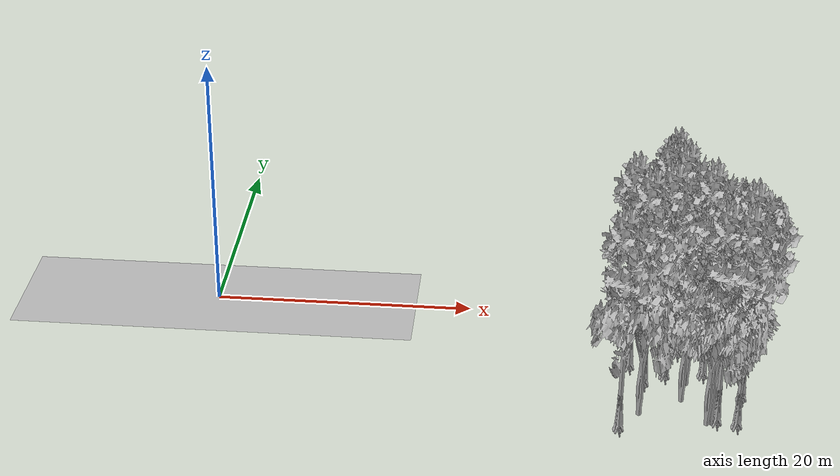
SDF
<sdf version="1.7">
 <world name="default">
  <model name="ground_plane">
   <static>1</static>
   <link name="link">
    <collision name="collision">
     <pose>-50 0 0 0 -0 0</pose>
     <geometry><plane><normal>0 0 1</normal><size>100 100</size></plane></geometry>
     <surface><contact><ode><min_depth>0.01</min_depth><max_vel>0</max_vel></ode></contact></surface>
    </collision>
    <visual name="grass">
     <cast_shadows>0</cast_shadows>
     <geometry>
      <mesh>
       <scale>0.5814285714285714 0.18142857142857144 0.1</scale>
       <uri>file://grass_plane/meshes/grass_plane.dae</uri>
      </mesh>
     </geometry>
    </visual>
   </link>
  </model>
  <model name="Tree 29">
   <static>1</static>
   <pose>36.32571474858473 -8.994952364970079 0 1.57079 -0 0</pose>
   <link name="link">
    <collision name="collision">
     <geometry><mesh><scale>3.5 5 3.5</scale><uri>model://tree_2/meshes/tree_2.obj</uri></mesh></geometry>
    </collision>
    <visual name="visual">
     <geometry><mesh><scale>3.5 5 3.5</scale><uri>model://tree_2/meshes/tree_2.obj</uri></mesh></geometry>
    </visual>
   </link>
  </model>
  <model name="Tree 42">
   <static>1</static>
   <pose>34.9254473961321 -7.58668823014683 0 1.57079 -0 0</pose>
   <link name="link">
    <collision name="collision">
     <geometry><mesh><scale>3.5 5 3.5</scale><uri>model://tree_9/meshes/tree_9.obj</uri></mesh></geometry>
    </collision>
    <visual name="visual">
     <geometry><mesh><scale>3.5 5 3.5</scale><uri>model://tree_9/meshes/tree_9.obj</uri></mesh></geometry>
    </visual>
   </link>
  </model>
  <model name="Tree 81">
   <static>1</static>
   <pose>35.373778588794934 -2.4698964358086624 0 1.57079 -0 0</pose>
   <link name="link">
    <collision name="collision">
     <geometry><mesh><scale>3.5 5 3.5</scale><uri>model://tree_9/meshes/tree_9.obj</uri></mesh></geometry>
    </collision>
    <visual name="visual">
     <geometry><mesh><scale>3.5 5 3.5</scale><uri>model://tree_9/meshes/tree_9.obj</uri></mesh></geometry>
    </visual>
   </link>
  </model>
  <model name="Tree 94">
   <static>1</static>
   <pose>32.79566492050654 -13.093585895643212 0 1.57079 -0 0</pose>
   <link name="link">
    <collision name="collision">
     <geometry><mesh><scale>3.5 5 3.5</scale><uri>model://tree_2/meshes/tree_2.obj</uri></mesh></geometry>
    </collision>
    <visual name="visual">
     <geometry><mesh><scale>3.5 5 3.5</scale><uri>model://tree_2/meshes/tree_2.obj</uri></mesh></geometry>
    </visual>
   </link>
  </model>
  <model name="Tree 102">
   <static>1</static>
   <pose>35.6959814997343 -0.07437951537089127 0 1.57079 -0 0</pose>
   <link name="link">
    <collision name="collision">
     <geometry><mesh><scale>3.5 5 3.5</scale><uri>model://tree_2/meshes/tree_2.obj</uri></mesh></geometry>
    </collision>
    <visual name="visual">
     <geometry><mesh><scale>3.5 5 3.5</scale><uri>model://tree_2/meshes/tree_2.obj</uri></mesh></geometry>
    </visual>
   </link>
  </model>
  <model name="Tree 169">
   <static>1</static>
   <pose>37.76007086675561 -7.217405416850485 0 1.57079 -0 0</pose>
   <link name="link">
    <collision name="collision">
     <geometry><mesh><scale>3.5 5 3.5</scale><uri>model://tree_9/meshes/tree_9.obj</uri></mesh></geometry>
    </collision>
    <visual name="visual">
     <geometry><mesh><scale>3.5 5 3.5</scale><uri>model://tree_9/meshes/tree_9.obj</uri></mesh></geometry>
    </visual>
   </link>
  </model>
  <model name="Tree 177">
   <static>1</static>
   <pose>40.76821783945631 0.4888879819969265 0 1.57079 -0 0</pose>
   <link name="link">
    <collision name="collision">
     <geometry><mesh><scale>3.5 5 3.5</scale><uri>model://tree_2/meshes/tree_2.obj</uri></mesh></geometry>
    </collision>
    <visual name="visual">
     <geometry><mesh><scale>3.5 5 3.5</scale><uri>model://tree_2/meshes/tree_2.obj</uri></mesh></geometry>
    </visual>
   </link>
  </model>
  <model name="Tree 182">
   <static>1</static>
   <pose>35.958897464913576 -4.47246208059078 0 1.57079 -0 0</pose>
   <link name="link">
    <collision name="collision">
     <geometry><mesh><scale>3.5 5 3.5</scale><uri>model://tree_9/meshes/tree_9.obj</uri></mesh></geometry>
    </collision>
    <visual name="visual">
     <geometry><mesh><scale>3.5 5 3.5</scale><uri>model://tree_9/meshes/tree_9.obj</uri></mesh></geometry>
    </visual>
   </link>
  </model>
  <model name="Tree 206">
   <static>1</static>
   <pose>37.837810863013374 -13.72571391643914 0 1.57079 -0 0</pose>
   <link name="link">
    <collision name="collision">
     <geometry><mesh><scale>3.5 5 3.5</scale><uri>model://tree_2/meshes/tree_2.obj</uri></mesh></geometry>
    </collision>
    <visual name="visual">
     <geometry><mesh><scale>3.5 5 3.5</scale><uri>model://tree_2/meshes/tree_2.obj</uri></mesh></geometry>
    </visual>
   </link>
  </model>
  <model name="Tree 218">
   <static>1</static>
   <pose>40.43995844700997 -9.968782964605484 0 1.57079 -0 0</pose>
   <link name="link">
    <collision name="collision">
     <geometry><mesh><scale>3.5 5 3.5</scale><uri>model://tree_9/meshes/tree_9.obj</uri></mesh></geometry>
    </collision>
    <visual name="visual">
     <geometry><mesh><scale>3.5 5 3.5</scale><uri>model://tree_9/meshes/tree_9.obj</uri></mesh></geometry>
    </visual>
   </link>
  </model>
  <model name="Tree 251">
   <static>1</static>
   <pose>37.598162064004185 -13.91899001240618 0 1.57079 -0 0</pose>
   <link name="link">
    <collision name="collision">
     <geometry><mesh><scale>3.5 5 3.5</scale><uri>model://tree_2/meshes/tree_2.obj</uri></mesh></geometry>
    </collision>
    <visual name="visual">
     <geometry><mesh><scale>3.5 5 3.5</scale><uri>model://tree_2/meshes/tree_2.obj</uri></mesh></geometry>
    </visual>
   </link>
  </model>
  <model name="Tree 276">
   <static>1</static>
   <pose>38.374602566290534 -12.854754569283113 0 1.57079 -0 0</pose>
   <link name="link">
    <collision name="collision">
     <geometry><mesh><scale>3.5 5 3.5</scale><uri>model://tree_2/meshes/tree_2.obj</uri></mesh></geometry>
    </collision>
    <visual name="visual">
     <geometry><mesh><scale>3.5 5 3.5</scale><uri>model://tree_2/meshes/tree_2.obj</uri></mesh></geometry>
    </visual>
   </link>
  </model>
  <model name="Tree 311">
   <static>1</static>
   <pose>35.10260598075915 -3.575478467219554 0 1.57079 -0 0</pose>
   <link name="link">
    <collision name="collision">
     <geometry><mesh><scale>3.5 5 3.5</scale><uri>model://tree_9/meshes/tree_9.obj</uri></mesh></geometry>
    </collision>
    <visual name="visual">
     <geometry><mesh><scale>3.5 5 3.5</scale><uri>model://tree_9/meshes/tree_9.obj</uri></mesh></geometry>
    </visual>
   </link>
  </model>
  <model name="Tree 322">
   <static>1</static>
   <pose>38.44847556047969 -13.129215330864985 0 1.57079 -0 0</pose>
   <link name="link">
    <collision name="collision">
     <geometry><mesh><scale>3.5 5 3.5</scale><uri>model://tree_9/meshes/tree_9.obj</uri></mesh></geometry>
    </collision>
    <visual name="visual">
     <geometry><mesh><scale>3.5 5 3.5</scale><uri>model://tree_9/meshes/tree_9.obj</uri></mesh></geometry>
    </visual>
   </link>
  </model>
  <model name="Tree 359">
   <static>1</static>
   <pose>35.61822718064141 -3.190079952205375 0 1.57079 -0 0</pose>
   <link name="link">
    <collision name="collision">
     <geometry><mesh><scale>3.5 5 3.5</scale><uri>model://tree_2/meshes/tree_2.obj</uri></mesh></geometry>
    </collision>
    <visual name="visual">
     <geometry><mesh><scale>3.5 5 3.5</scale><uri>model://tree_2/meshes/tree_2.obj</uri></mesh></geometry>
    </visual>
   </link>
  </model>
  <model name="Tree 378">
   <static>1</static>
   <pose>39.8793832231853 -13.454902990605364 0 1.57079 -0 0</pose>
   <link name="link">
    <collision name="collision">
     <geometry><mesh><scale>3.5 5 3.5</scale><uri>model://tree_9/meshes/tree_9.obj</uri></mesh></geometry>
    </collision>
    <visual name="visual">
     <geometry><mesh><scale>3.5 5 3.5</scale><uri>model://tree_9/meshes/tree_9.obj</uri></mesh></geometry>
    </visual>
   </link>
  </model>
  <model name="Tree 409">
   <static>1</static>
   <pose>32.3152965745484 -6.55460995013703 0 1.57079 -0 0</pose>
   <link name="link">
    <collision name="collision">
     <geometry><mesh><scale>3.5 5 3.5</scale><uri>model://tree_9/meshes/tree_9.obj</uri></mesh></geometry>
    </collision>
    <visual name="visual">
     <geometry><mesh><scale>3.5 5 3.5</scale><uri>model://tree_9/meshes/tree_9.obj</uri></mesh></geometry>
    </visual>
   </link>
  </model>
  <model name="Tree 424">
   <static>1</static>
   <pose>36.345175766459406 -8.501096724038955 0 1.57079 -0 0</pose>
   <link name="link">
    <collision name="collision">
     <geometry><mesh><scale>3.5 5 3.5</scale><uri>model://tree_2/meshes/tree_2.obj</uri></mesh></geometry>
    </collision>
    <visual name="visual">
     <geometry><mesh><scale>3.5 5 3.5</scale><uri>model://tree_2/meshes/tree_2.obj</uri></mesh></geometry>
    </visual>
   </link>
  </model>
  <model name="Tree 468">
   <static>1</static>
   <pose>33.351012721073204 -8.675570456178491 0 1.57079 -0 0</pose>
   <link name="link">
    <collision name="collision">
     <geometry><mesh><scale>3.5 5 3.5</scale><uri>model://tree_9/meshes/tree_9.obj</uri></mesh></geometry>
    </collision>
    <visual name="visual">
     <geometry><mesh><scale>3.5 5 3.5</scale><uri>model://tree_9/meshes/tree_9.obj</uri></mesh></geometry>
    </visual>
   </link>
  </model>
  <model name="Tree 492">
   <static>1</static>
   <pose>34.858276971306836 -4.000385164776832 0 1.57079 -0 0</pose>
   <link name="link">
    <collision name="collision">
     <geometry><mesh><scale>3.5 5 3.5</scale><uri>model://tree_9/meshes/tree_9.obj</uri></mesh></geometry>
    </collision>
    <visual name="visual">
     <geometry><mesh><scale>3.5 5 3.5</scale><uri>model://tree_9/meshes/tree_9.obj</uri></mesh></geometry>
    </visual>
   </link>
  </model>
  <model name="Tree 503">
   <static>1</static>
   <pose>31.437692960935323 -14.509718115144073 0 1.57079 -0 0</pose>
   <link name="link">
    <collision name="collision">
     <geometry><mesh><scale>3.5 5 3.5</scale><uri>model://tree_9/meshes/tree_9.obj</uri></mesh></geometry>
    </collision>
    <visual name="visual">
     <geometry><mesh><scale>3.5 5 3.5</scale><uri>model://tree_9/meshes/tree_9.obj</uri></mesh></geometry>
    </visual>
   </link>
  </model>
  <model name="Tree 514">
   <static>1</static>
   <pose>35.89834544071928 -11.130598134270496 0 1.57079 -0 0</pose>
   <link name="link">
    <collision name="collision">
     <geometry><mesh><scale>3.5 5 3.5</scale><uri>model://tree_2/meshes/tree_2.obj</uri></mesh></geometry>
    </collision>
    <visual name="visual">
     <geometry><mesh><scale>3.5 5 3.5</scale><uri>model://tree_2/meshes/tree_2.obj</uri></mesh></geometry>
    </visual>
   </link>
  </model>
  <model name="Tree 521">
   <static>1</static>
   <pose>38.10601704045051 -5.353956642852291 0 1.57079 -0 0</pose>
   <link name="link">
    <collision name="collision">
     <geometry><mesh><scale>3.5 5 3.5</scale><uri>model://tree_2/meshes/tree_2.obj</uri></mesh></geometry>
    </collision>
    <visual name="visual">
     <geometry><mesh><scale>3.5 5 3.5</scale><uri>model://tree_2/meshes/tree_2.obj</uri></mesh></geometry>
    </visual>
   </link>
  </model>
 </world>
</sdf>
